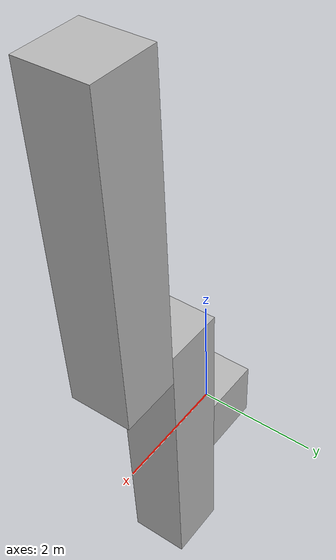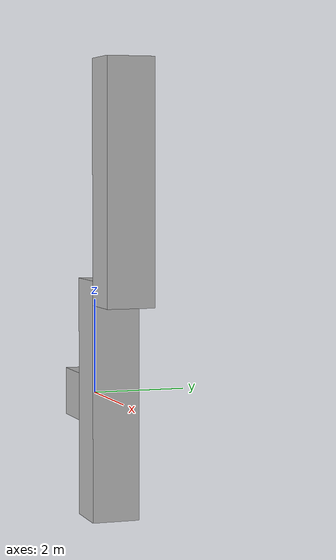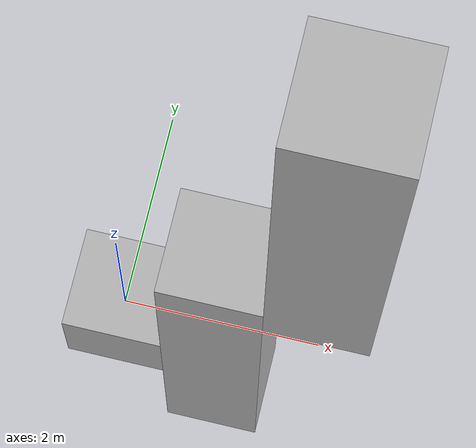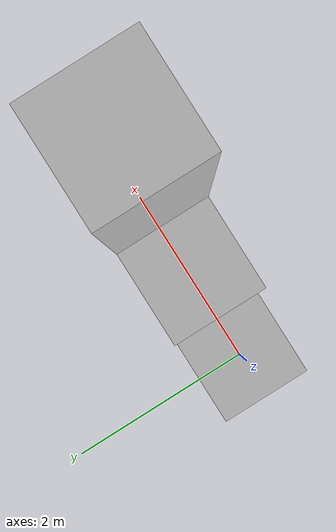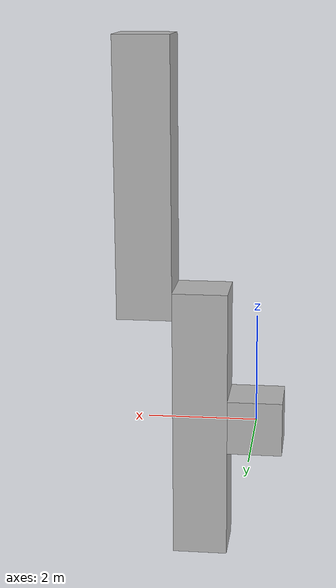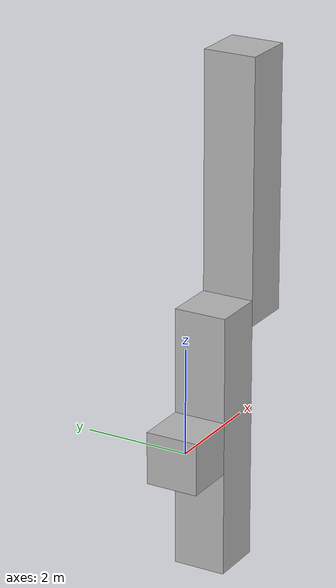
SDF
<?xml version='1.0'?>
<sdf version="1.4">
<model name="double_inverted_pendulum">
  <pose>0 0 0 0 0 0</pose>
  <static>false</static>

  <link name = "base">
  <pose>0 0 0 0 0 0</pose>
  <inertial>
  <mass>0.2</mass>
  <inertia> <!-- interias are tricky to compute -->
    <!-- http://answers.gazebosim.org/question/4372/the-inertia-matrix-explained/ -->
    <ixx>0.083</ixx>       <!-- for a box: ixx = 0.083 * mass * (y*y + z*z) -->
    <ixy>0.0</ixy>         <!-- for a box: ixy = 0 -->
    <ixz>0.0</ixz>         <!-- for a box: ixz = 0 -->
    <iyy>0.083</iyy>       <!-- for a box: iyy = 0.083 * mass * (x*x + z*z) -->
    <iyz>0.0</iyz>         <!-- for a box: iyz = 0 -->
    <izz>0.083</izz>       <!-- for a box: izz = 0.083 * mass * (x*x + y*y) -->
    </inertia>
  </inertial>
  <collision name="collision_base">
    <geometry>
      <box>
        <size>1 1 1</size>
      </box>
    </geometry>
  </collision>
  <visual name="visual_base">
    <geometry>
      <box>
        <size>1 1 1</size>
      </box>
    </geometry>
  </visual>
</link>

    <link name="link1">
    <pose>1 0 0 0 0 0</pose>
      <inertial>
        <mass>1.0</mass>
        <inertia> <!-- interias are tricky to compute -->
          <!-- http://answers.gazebosim.org/question/4372/the-inertia-matrix-explained/ -->
          <ixx>0.083</ixx>       <!-- for a box: ixx = 0.083 * mass * (y*y + z*z) -->
          <ixy>0.0</ixy>         <!-- for a box: ixy = 0 -->
          <ixz>0.0</ixz>         <!-- for a box: ixz = 0 -->
          <iyy>0.083</iyy>       <!-- for a box: iyy = 0.083 * mass * (x*x + z*z) -->
          <iyz>0.0</iyz>         <!-- for a box: iyz = 0 -->
          <izz>0.083</izz>       <!-- for a box: izz = 0.083 * mass * (x*x + y*y) -->
        </inertia>
      </inertial>
      <collision name="collision1">
        <geometry>
          <box>
            <size>1 1 5</size>
          </box>
        </geometry>
      </collision>
      <visual name="visual1">
        <geometry>
          <box>
            <size>1 1 5</size>
          </box>
        </geometry>
      </visual>
    </link>

    <link name="link2">
    <pose>2 0 4.5 0 0 0</pose>
      <inertial>
        <mass>1.0</mass>
        <inertia> <!-- interias are tricky to compute -->
          <!-- http://answers.gazebosim.org/question/4372/the-inertia-matrix-explained/ -->
          <ixx>0.083</ixx>       <!-- for a box: ixx = 0.083 * mass * (y*y + z*z) -->
          <ixy>0.0</ixy>         <!-- for a box: ixy = 0 -->
          <ixz>0.0</ixz>         <!-- for a box: ixz = 0 -->
          <iyy>0.083</iyy>       <!-- for a box: iyy = 0.083 * mass * (x*x + z*z) -->
          <iyz>0.0</iyz>         <!-- for a box: iyz = 0 -->
          <izz>0.083</izz>       <!-- for a box: izz = 0.083 * mass * (x*x + y*y) -->
        </inertia>
      </inertial>
      <collision name="collision2">
        <geometry>
          <box>
            <size>1 1 5</size>
          </box>
        </geometry>
      </collision>
      <visual name="visual2">
        <geometry>
          <box>
            <size>1 1 5</size>
          </box>
        </geometry>
      </visual>
    </link>

    <joint type="revolute" name="base_link1_rev">
      <pose>1 0 0 0 0 0</pose>
      <child>link1</child>
      <parent>base</parent>
      <axis>
        <xyz>0 1 0</xyz>
      </axis>
    </joint>

    <joint type="revolute" name="base_link1_rev">
      <pose>2 0 4.5 0 0</pose>
      <child>link1</child>
      <parent>base</parent>
      <axis>
        <xyz>0 1 0</xyz>
      </axis>
    </joint>

  </model>
</sdf>
